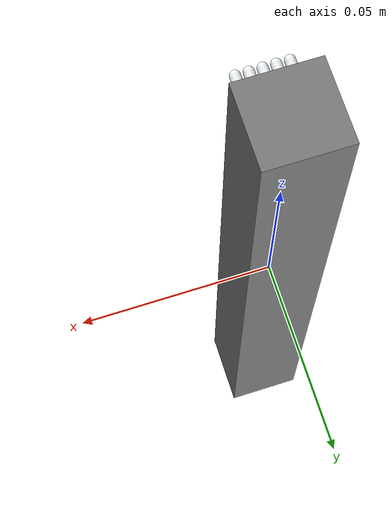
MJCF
<?xml version='1.0' encoding='utf8'?>
<mujoco model="vla82_vla82_058">
  <compiler angle="radian" />
  <asset>
    <texture name="source_texture" type="2d" file="source_texture.png" />
    <material name="source_material" texture="source_texture" rgba="1 1 1 1" />
  </asset>
  <default>
    <default class="visual"><geom contype="0" conaffinity="0" group="1" /></default>
    <default class="collision"><geom contype="1" conaffinity="1" group="0" density="300" friction="0.55 0.005 0.0002" solref="0.02 1" solimp="0.9 0.95 0.001" /></default>
    <default class="region"><geom contype="0" conaffinity="0" group="1" rgba="0 1 0 0" mass="0" /></default>
  </default>
  <worldbody><body><body name="object">
    <geom name="toothbrush_handle_visual" class="visual" type="capsule" fromto="0 0 -0.082 0 0 0.025" size="0.0075" rgba="0.10 0.43 0.86 1" />
    <geom name="toothbrush_grip_inlay_visual" class="visual" type="capsule" fromto="0 -0.006 -0.056 0 -0.006 -0.008" size="0.0022" rgba="0.93 0.97 1.00 1" />
    <geom name="toothbrush_neck_visual" class="visual" type="capsule" fromto="0 0 0.020 0 0 0.052" size="0.0045" rgba="0.91 0.96 1.00 1" />
    <geom name="toothbrush_head_visual" class="visual" type="ellipsoid" pos="0 0 0.066" size="0.010 0.0055 0.020" rgba="0.12 0.50 0.91 1" />
    <geom name="toothbrush_bristle_white_0" class="visual" type="capsule" fromto="-0.0060 -0.0045 0.0540 -0.0060 -0.0170 0.0540" size="0.00125" rgba="0.97 0.99 1.00 1" />
    <geom name="toothbrush_bristle_white_1" class="visual" type="capsule" fromto="-0.0030 -0.0045 0.0540 -0.0030 -0.0170 0.0540" size="0.00125" rgba="0.97 0.99 1.00 1" />
    <geom name="toothbrush_bristle_white_2" class="visual" type="capsule" fromto="0.0000 -0.0045 0.0540 0.0000 -0.0170 0.0540" size="0.00125" rgba="0.97 0.99 1.00 1" />
    <geom name="toothbrush_bristle_white_3" class="visual" type="capsule" fromto="0.0030 -0.0045 0.0540 0.0030 -0.0170 0.0540" size="0.00125" rgba="0.97 0.99 1.00 1" />
    <geom name="toothbrush_bristle_white_4" class="visual" type="capsule" fromto="0.0060 -0.0045 0.0540 0.0060 -0.0170 0.0540" size="0.00125" rgba="0.97 0.99 1.00 1" />
    <geom name="toothbrush_bristle_blue_0" class="visual" type="capsule" fromto="-0.0060 -0.0045 0.0620 -0.0060 -0.0170 0.0620" size="0.00125" rgba="0.42 0.78 1.00 1" />
    <geom name="toothbrush_bristle_blue_1" class="visual" type="capsule" fromto="-0.0030 -0.0045 0.0620 -0.0030 -0.0170 0.0620" size="0.00125" rgba="0.42 0.78 1.00 1" />
    <geom name="toothbrush_bristle_blue_2" class="visual" type="capsule" fromto="0.0000 -0.0045 0.0620 0.0000 -0.0170 0.0620" size="0.00125" rgba="0.42 0.78 1.00 1" />
    <geom name="toothbrush_bristle_blue_3" class="visual" type="capsule" fromto="0.0030 -0.0045 0.0620 0.0030 -0.0170 0.0620" size="0.00125" rgba="0.42 0.78 1.00 1" />
    <geom name="toothbrush_bristle_blue_4" class="visual" type="capsule" fromto="0.0060 -0.0045 0.0620 0.0060 -0.0170 0.0620" size="0.00125" rgba="0.42 0.78 1.00 1" />
    <geom name="toothbrush_bristle_white_5" class="visual" type="capsule" fromto="-0.0060 -0.0045 0.0700 -0.0060 -0.0170 0.0700" size="0.00125" rgba="0.97 0.99 1.00 1" />
    <geom name="toothbrush_bristle_blue_5" class="visual" type="capsule" fromto="-0.0030 -0.0045 0.0700 -0.0030 -0.0170 0.0700" size="0.00125" rgba="0.42 0.78 1.00 1" />
    <geom name="toothbrush_bristle_white_6" class="visual" type="capsule" fromto="0.0000 -0.0045 0.0700 0.0000 -0.0170 0.0700" size="0.00125" rgba="0.97 0.99 1.00 1" />
    <geom name="toothbrush_bristle_blue_6" class="visual" type="capsule" fromto="0.0030 -0.0045 0.0700 0.0030 -0.0170 0.0700" size="0.00125" rgba="0.42 0.78 1.00 1" />
    <geom name="toothbrush_bristle_white_7" class="visual" type="capsule" fromto="0.0060 -0.0045 0.0700 0.0060 -0.0170 0.0700" size="0.00125" rgba="0.97 0.99 1.00 1" />
    <geom name="toothbrush_bristle_white_8" class="visual" type="capsule" fromto="-0.0060 -0.0045 0.0780 -0.0060 -0.0170 0.0780" size="0.00125" rgba="0.97 0.99 1.00 1" />
    <geom name="toothbrush_bristle_white_9" class="visual" type="capsule" fromto="-0.0030 -0.0045 0.0780 -0.0030 -0.0170 0.0780" size="0.00125" rgba="0.97 0.99 1.00 1" />
    <geom name="toothbrush_bristle_white_10" class="visual" type="capsule" fromto="0.0000 -0.0045 0.0780 0.0000 -0.0170 0.0780" size="0.00125" rgba="0.97 0.99 1.00 1" />
    <geom name="toothbrush_bristle_white_11" class="visual" type="capsule" fromto="0.0030 -0.0045 0.0780 0.0030 -0.0170 0.0780" size="0.00125" rgba="0.97 0.99 1.00 1" />
    <geom name="toothbrush_bristle_white_12" class="visual" type="capsule" fromto="0.0060 -0.0045 0.0780 0.0060 -0.0170 0.0780" size="0.00125" rgba="0.97 0.99 1.00 1" />
    <geom name="collision" class="collision" type="box" size="0.010000 0.010000 0.090000" />
    <geom name="reg_bbox" class="region" type="box" pos="0 0 0" size="0.010000 0.010000 0.090000" />
  </body></body></worldbody>
  <actuator />
</mujoco>
